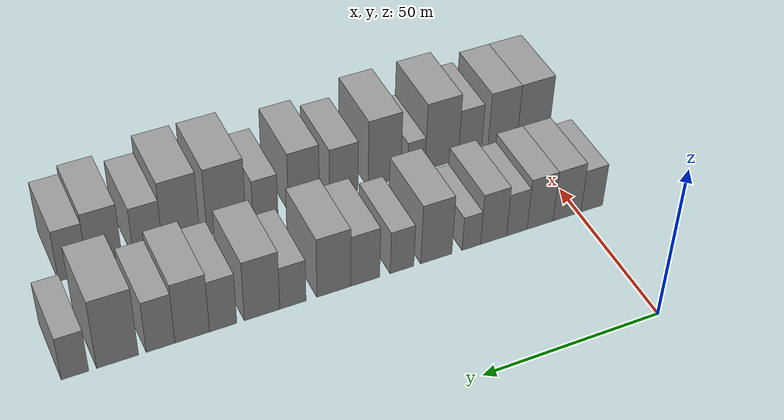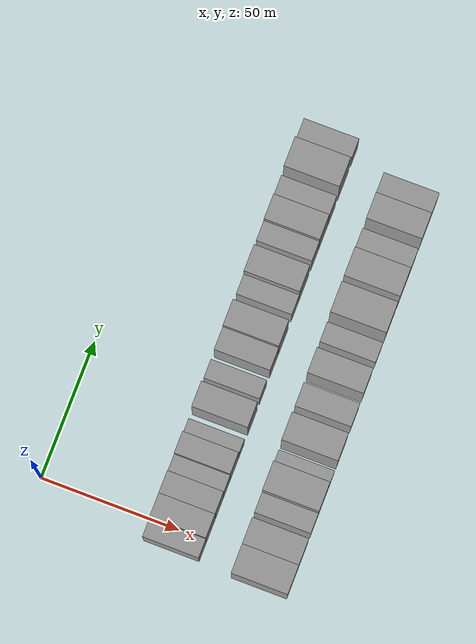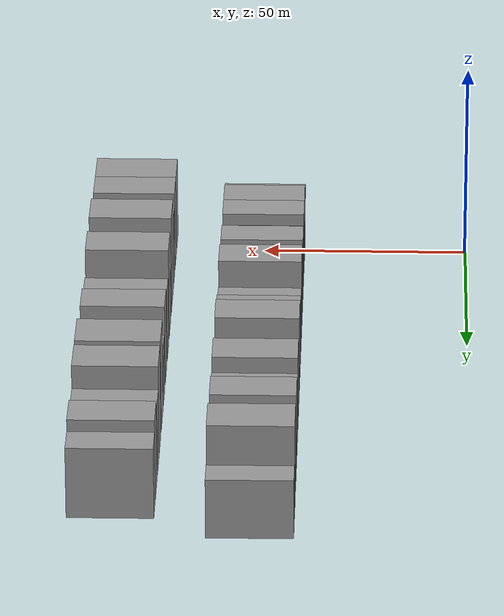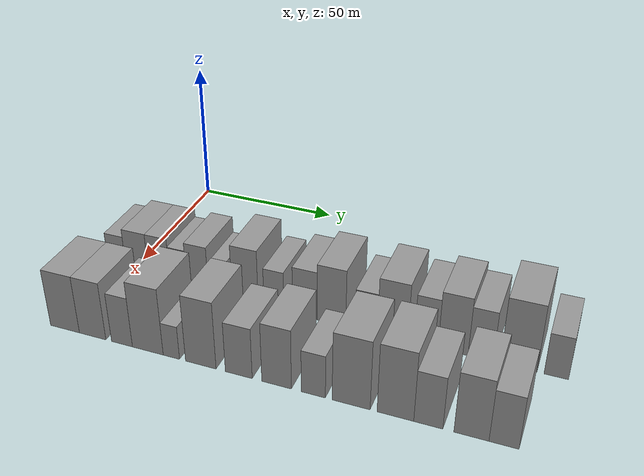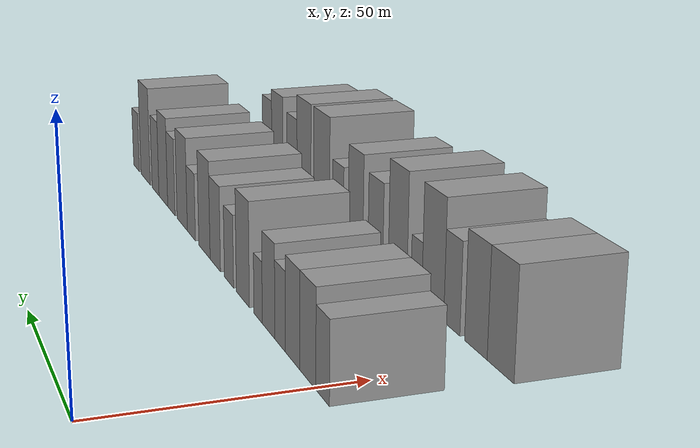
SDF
<sdf version="1.6">
 <world name="default">
  <model name="building_32">
   <static>1</static>
   <pose>50.0000 -4.1049 0 0.000000 0.000000 0.000000</pose>
   <link name="link">
    <pose>0 0 7.50 0 0 0</pose>
    <collision name="collision"><geometry><box><size>20.0000 6.8079 15.0000</size></box></geometry></collision>
    <visual name="visual">
     <cast_shadows>0</cast_shadows>
     <geometry><box><size>20.0000 6.8079 15.0000</size></box></geometry>
     <material>
      <script>
       <uri>model://grey_wall/materials/scripts</uri>
       <uri>model://grey_wall/materials/textures</uri>
       <name>vrc/grey_wall</name>
      </script>
     </material>
    </visual>
   </link>
  </model>
  <model name="building_33">
   <static>1</static>
   <pose>50.0000 3.5767 0 0.000000 0.000000 0.000000</pose>
   <link name="link">
    <pose>0 0 9.00 0 0 0</pose>
    <collision name="collision"><geometry><box><size>20.0000 8.5552 18.0000</size></box></geometry></collision>
    <visual name="visual">
     <cast_shadows>0</cast_shadows>
     <geometry><box><size>20.0000 8.5552 18.0000</size></box></geometry>
     <material>
      <script>
       <uri>model://grey_wall/materials/scripts</uri>
       <uri>model://grey_wall/materials/textures</uri>
       <name>vrc/grey_wall</name>
      </script>
     </material>
    </visual>
   </link>
  </model>
  <model name="building_34">
   <static>1</static>
   <pose>50.0000 11.8458 0 0.000000 0.000000 0.000000</pose>
   <link name="link">
    <pose>0 0 9.00 0 0 0</pose>
    <collision name="collision"><geometry><box><size>20.0000 7.9831 18.0000</size></box></geometry></collision>
    <visual name="visual">
     <cast_shadows>0</cast_shadows>
     <geometry><box><size>20.0000 7.9831 18.0000</size></box></geometry>
     <material>
      <script>
       <uri>model://grey_wall/materials/scripts</uri>
       <uri>model://grey_wall/materials/textures</uri>
       <name>vrc/grey_wall</name>
      </script>
     </material>
    </visual>
   </link>
  </model>
  <model name="building_35">
   <static>1</static>
   <pose>50.0000 18.9449 0 0.000000 0.000000 0.000000</pose>
   <link name="link">
    <pose>0 0 7.50 0 0 0</pose>
    <collision name="collision"><geometry><box><size>20.0000 6.2151 15.0000</size></box></geometry></collision>
    <visual name="visual">
     <cast_shadows>0</cast_shadows>
     <geometry><box><size>20.0000 6.2151 15.0000</size></box></geometry>
     <material>
      <script>
       <uri>model://grey_wall/materials/scripts</uri>
       <uri>model://grey_wall/materials/textures</uri>
       <name>vrc/grey_wall</name>
      </script>
     </material>
    </visual>
   </link>
  </model>
  <model name="building_36">
   <static>1</static>
   <pose>50.0000 25.9649 0 0.000000 0.000000 0.000000</pose>
   <link name="link">
    <pose>0 0 9.00 0 0 0</pose>
    <collision name="collision"><geometry><box><size>20.0000 7.8249 18.0000</size></box></geometry></collision>
    <visual name="visual">
     <cast_shadows>0</cast_shadows>
     <geometry><box><size>20.0000 7.8249 18.0000</size></box></geometry>
     <material>
      <script>
       <uri>model://grey_wall/materials/scripts</uri>
       <uri>model://grey_wall/materials/textures</uri>
       <name>vrc/grey_wall</name>
      </script>
     </material>
    </visual>
   </link>
  </model>
  <model name="building_37">
   <static>1</static>
   <pose>50.0000 32.6095 0 0.000000 0.000000 0.000000</pose>
   <link name="link">
    <pose>0 0 6.00 0 0 0</pose>
    <collision name="collision"><geometry><box><size>20.0000 5.4643 12.0000</size></box></geometry></collision>
    <visual name="visual">
     <cast_shadows>0</cast_shadows>
     <geometry><box><size>20.0000 5.4643 12.0000</size></box></geometry>
     <material>
      <script>
       <uri>model://grey_wall/materials/scripts</uri>
       <uri>model://grey_wall/materials/textures</uri>
       <name>vrc/grey_wall</name>
      </script>
     </material>
    </visual>
   </link>
  </model>
  <model name="building_38">
   <static>1</static>
   <pose>50.0000 42.9192 0 0.000000 0.000000 0.000000</pose>
   <link name="link">
    <pose>0 0 10.50 0 0 0</pose>
    <collision name="collision"><geometry><box><size>20.0000 9.1551 21.0000</size></box></geometry></collision>
    <visual name="visual">
     <cast_shadows>0</cast_shadows>
     <geometry><box><size>20.0000 9.1551 21.0000</size></box></geometry>
     <material>
      <script>
       <uri>model://grey_wall/materials/scripts</uri>
       <uri>model://grey_wall/materials/textures</uri>
       <name>vrc/grey_wall</name>
      </script>
     </material>
    </visual>
   </link>
  </model>
  <model name="building_39">
   <static>1</static>
   <pose>50.0000 52.9085 0 0.000000 0.000000 0.000000</pose>
   <link name="link">
    <pose>0 0 7.50 0 0 0</pose>
    <collision name="collision"><geometry><box><size>20.0000 6.8234 15.0000</size></box></geometry></collision>
    <visual name="visual">
     <cast_shadows>0</cast_shadows>
     <geometry><box><size>20.0000 6.8234 15.0000</size></box></geometry>
     <material>
      <script>
       <uri>model://grey_wall/materials/scripts</uri>
       <uri>model://grey_wall/materials/textures</uri>
       <name>vrc/grey_wall</name>
      </script>
     </material>
    </visual>
   </link>
  </model>
  <model name="building_40">
   <static>1</static>
   <pose>50.0000 63.4467 0 0.000000 0.000000 0.000000</pose>
   <link name="link">
    <pose>0 0 9.00 0 0 0</pose>
    <collision name="collision"><geometry><box><size>20.0000 8.2529 18.0000</size></box></geometry></collision>
    <visual name="visual">
     <cast_shadows>0</cast_shadows>
     <geometry><box><size>20.0000 8.2529 18.0000</size></box></geometry>
     <material>
      <script>
       <uri>model://grey_wall/materials/scripts</uri>
       <uri>model://grey_wall/materials/textures</uri>
       <name>vrc/grey_wall</name>
      </script>
     </material>
    </visual>
   </link>
  </model>
  <model name="building_41">
   <static>1</static>
   <pose>50.0000 72.3110 0 0.000000 0.000000 0.000000</pose>
   <link name="link">
    <pose>0 0 10.50 0 0 0</pose>
    <collision name="collision"><geometry><box><size>20.0000 9.4759 21.0000</size></box></geometry></collision>
    <visual name="visual">
     <cast_shadows>0</cast_shadows>
     <geometry><box><size>20.0000 9.4759 21.0000</size></box></geometry>
     <material>
      <script>
       <uri>model://grey_wall/materials/scripts</uri>
       <uri>model://grey_wall/materials/textures</uri>
       <name>vrc/grey_wall</name>
      </script>
     </material>
    </visual>
   </link>
  </model>
  <model name="building_42">
   <static>1</static>
   <pose>50.0000 83.6777 0 0.000000 0.000000 0.000000</pose>
   <link name="link">
    <pose>0 0 7.50 0 0 0</pose>
    <collision name="collision"><geometry><box><size>20.0000 7.2575 15.0000</size></box></geometry></collision>
    <visual name="visual">
     <cast_shadows>0</cast_shadows>
     <geometry><box><size>20.0000 7.2575 15.0000</size></box></geometry>
     <material>
      <script>
       <uri>model://grey_wall/materials/scripts</uri>
       <uri>model://grey_wall/materials/textures</uri>
       <name>vrc/grey_wall</name>
      </script>
     </material>
    </visual>
   </link>
  </model>
  <model name="building_43">
   <static>1</static>
   <pose>50.0000 92.1425 0 0.000000 0.000000 0.000000</pose>
   <link name="link">
    <pose>0 0 10.50 0 0 0</pose>
    <collision name="collision"><geometry><box><size>20.0000 9.6722 21.0000</size></box></geometry></collision>
    <visual name="visual">
     <cast_shadows>0</cast_shadows>
     <geometry><box><size>20.0000 9.6722 21.0000</size></box></geometry>
     <material>
      <script>
       <uri>model://grey_wall/materials/scripts</uri>
       <uri>model://grey_wall/materials/textures</uri>
       <name>vrc/grey_wall</name>
      </script>
     </material>
    </visual>
   </link>
  </model>
  <model name="building_44">
   <static>1</static>
   <pose>50.0000 102.6468 0 0.000000 0.000000 0.000000</pose>
   <link name="link">
    <pose>0 0 9.00 0 0 0</pose>
    <collision name="collision"><geometry><box><size>20.0000 7.3364 18.0000</size></box></geometry></collision>
    <visual name="visual">
     <cast_shadows>0</cast_shadows>
     <geometry><box><size>20.0000 7.3364 18.0000</size></box></geometry>
     <material>
      <script>
       <uri>model://grey_wall/materials/scripts</uri>
       <uri>model://grey_wall/materials/textures</uri>
       <name>vrc/grey_wall</name>
      </script>
     </material>
    </visual>
   </link>
  </model>
  <model name="building_45">
   <static>1</static>
   <pose>50.0000 110.8877 0 0.000000 0.000000 0.000000</pose>
   <link name="link">
    <pose>0 0 10.50 0 0 0</pose>
    <collision name="collision"><geometry><box><size>20.0000 9.1454 21.0000</size></box></geometry></collision>
    <visual name="visual">
     <cast_shadows>0</cast_shadows>
     <geometry><box><size>20.0000 9.1454 21.0000</size></box></geometry>
     <material>
      <script>
       <uri>model://grey_wall/materials/scripts</uri>
       <uri>model://grey_wall/materials/textures</uri>
       <name>vrc/grey_wall</name>
      </script>
     </material>
    </visual>
   </link>
  </model>
  <model name="building_46">
   <static>1</static>
   <pose>50.0000 119.2314 0 0.000000 0.000000 0.000000</pose>
   <link name="link">
    <pose>0 0 9.00 0 0 0</pose>
    <collision name="collision"><geometry><box><size>20.0000 7.5420 18.0000</size></box></geometry></collision>
    <visual name="visual">
     <cast_shadows>0</cast_shadows>
     <geometry><box><size>20.0000 7.5420 18.0000</size></box></geometry>
     <material>
      <script>
       <uri>model://grey_wall/materials/scripts</uri>
       <uri>model://grey_wall/materials/textures</uri>
       <name>vrc/grey_wall</name>
      </script>
     </material>
    </visual>
   </link>
  </model>
  <model name="building_47">
   <static>1</static>
   <pose>50.0000 130.3996 0 0.000000 0.000000 0.000000</pose>
   <link name="link">
    <pose>0 0 12.00 0 0 0</pose>
    <collision name="collision"><geometry><box><size>20.0000 10.7944 24.0000</size></box></geometry></collision>
    <visual name="visual">
     <cast_shadows>0</cast_shadows>
     <geometry><box><size>20.0000 10.7944 24.0000</size></box></geometry>
     <material>
      <script>
       <uri>model://grey_wall/materials/scripts</uri>
       <uri>model://grey_wall/materials/textures</uri>
       <name>vrc/grey_wall</name>
      </script>
     </material>
    </visual>
   </link>
  </model>
  <model name="building_48">
   <static>1</static>
   <pose>50.0000 141.2876 0 0.000000 0.000000 0.000000</pose>
   <link name="link">
    <pose>0 0 7.50 0 0 0</pose>
    <collision name="collision"><geometry><box><size>20.0000 6.9815 15.0000</size></box></geometry></collision>
    <visual name="visual">
     <cast_shadows>0</cast_shadows>
     <geometry><box><size>20.0000 6.9815 15.0000</size></box></geometry>
     <material>
      <script>
       <uri>model://grey_wall/materials/scripts</uri>
       <uri>model://grey_wall/materials/textures</uri>
       <name>vrc/grey_wall</name>
      </script>
     </material>
    </visual>
   </link>
  </model>
  <model name="building_95">
   <static>1</static>
   <pose>82.0000 -3.5701 0 0.000000 0.000000 0.000000</pose>
   <link name="link">
    <pose>0 0 10.50 0 0 0</pose>
    <collision name="collision"><geometry><box><size>20.0000 10.4129 21.0000</size></box></geometry></collision>
    <visual name="visual">
     <cast_shadows>0</cast_shadows>
     <geometry><box><size>20.0000 10.4129 21.0000</size></box></geometry>
     <material>
      <script>
       <uri>model://grey_wall/materials/scripts</uri>
       <uri>model://grey_wall/materials/textures</uri>
       <name>vrc/grey_wall</name>
      </script>
     </material>
    </visual>
   </link>
  </model>
  <model name="building_96">
   <static>1</static>
   <pose>82.0000 6.3272 0 0.000000 0.000000 0.000000</pose>
   <link name="link">
    <pose>0 0 10.50 0 0 0</pose>
    <collision name="collision"><geometry><box><size>20.0000 9.3818 21.0000</size></box></geometry></collision>
    <visual name="visual">
     <cast_shadows>0</cast_shadows>
     <geometry><box><size>20.0000 9.3818 21.0000</size></box></geometry>
     <material>
      <script>
       <uri>model://grey_wall/materials/scripts</uri>
       <uri>model://grey_wall/materials/textures</uri>
       <name>vrc/grey_wall</name>
      </script>
     </material>
    </visual>
   </link>
  </model>
  <model name="building_97">
   <static>1</static>
   <pose>82.0000 16.6407 0 0.000000 0.000000 0.000000</pose>
   <link name="link">
    <pose>0 0 9.00 0 0 0</pose>
    <collision name="collision"><geometry><box><size>20.0000 7.2453 18.0000</size></box></geometry></collision>
    <visual name="visual">
     <cast_shadows>0</cast_shadows>
     <geometry><box><size>20.0000 7.2453 18.0000</size></box></geometry>
     <material>
      <script>
       <uri>model://grey_wall/materials/scripts</uri>
       <uri>model://grey_wall/materials/textures</uri>
       <name>vrc/grey_wall</name>
      </script>
     </material>
    </visual>
   </link>
  </model>
  <model name="building_98">
   <static>1</static>
   <pose>82.0000 25.4958 0 0.000000 0.000000 0.000000</pose>
   <link name="link">
    <pose>0 0 12.00 0 0 0</pose>
    <collision name="collision"><geometry><box><size>20.0000 10.4648 24.0000</size></box></geometry></collision>
    <visual name="visual">
     <cast_shadows>0</cast_shadows>
     <geometry><box><size>20.0000 10.4648 24.0000</size></box></geometry>
     <material>
      <script>
       <uri>model://grey_wall/materials/scripts</uri>
       <uri>model://grey_wall/materials/textures</uri>
       <name>vrc/grey_wall</name>
      </script>
     </material>
    </visual>
   </link>
  </model>
  <model name="building_99">
   <static>1</static>
   <pose>82.0000 33.4550 0 0.000000 0.000000 0.000000</pose>
   <link name="link">
    <pose>0 0 6.00 0 0 0</pose>
    <collision name="collision"><geometry><box><size>20.0000 5.4536 12.0000</size></box></geometry></collision>
    <visual name="visual">
     <cast_shadows>0</cast_shadows>
     <geometry><box><size>20.0000 5.4536 12.0000</size></box></geometry>
     <material>
      <script>
       <uri>model://grey_wall/materials/scripts</uri>
       <uri>model://grey_wall/materials/textures</uri>
       <name>vrc/grey_wall</name>
      </script>
     </material>
    </visual>
   </link>
  </model>
  <model name="building_100">
   <static>1</static>
   <pose>82.0000 43.1637 0 0.000000 0.000000 0.000000</pose>
   <link name="link">
    <pose>0 0 12.00 0 0 0</pose>
    <collision name="collision"><geometry><box><size>20.0000 9.9637 24.0000</size></box></geometry></collision>
    <visual name="visual">
     <cast_shadows>0</cast_shadows>
     <geometry><box><size>20.0000 9.9637 24.0000</size></box></geometry>
     <material>
      <script>
       <uri>model://grey_wall/materials/scripts</uri>
       <uri>model://grey_wall/materials/textures</uri>
       <name>vrc/grey_wall</name>
      </script>
     </material>
    </visual>
   </link>
  </model>
  <model name="building_101">
   <static>1</static>
   <pose>82.0000 55.4075 0 0.000000 0.000000 0.000000</pose>
   <link name="link">
    <pose>0 0 9.00 0 0 0</pose>
    <collision name="collision"><geometry><box><size>20.0000 8.5238 18.0000</size></box></geometry></collision>
    <visual name="visual">
     <cast_shadows>0</cast_shadows>
     <geometry><box><size>20.0000 8.5238 18.0000</size></box></geometry>
     <material>
      <script>
       <uri>model://grey_wall/materials/scripts</uri>
       <uri>model://grey_wall/materials/textures</uri>
       <name>vrc/grey_wall</name>
      </script>
     </material>
    </visual>
   </link>
  </model>
  <model name="building_102">
   <static>1</static>
   <pose>82.0000 67.2413 0 0.000000 0.000000 0.000000</pose>
   <link name="link">
    <pose>0 0 10.50 0 0 0</pose>
    <collision name="collision"><geometry><box><size>20.0000 9.1438 21.0000</size></box></geometry></collision>
    <visual name="visual">
     <cast_shadows>0</cast_shadows>
     <geometry><box><size>20.0000 9.1438 21.0000</size></box></geometry>
     <material>
      <script>
       <uri>model://grey_wall/materials/scripts</uri>
       <uri>model://grey_wall/materials/textures</uri>
       <name>vrc/grey_wall</name>
      </script>
     </material>
    </visual>
   </link>
  </model>
  <model name="building_103">
   <static>1</static>
   <pose>82.0000 78.4467 0 0.000000 0.000000 0.000000</pose>
   <link name="link">
    <pose>0 0 7.50 0 0 0</pose>
    <collision name="collision"><geometry><box><size>20.0000 7.2670 15.0000</size></box></geometry></collision>
    <visual name="visual">
     <cast_shadows>0</cast_shadows>
     <geometry><box><size>20.0000 7.2670 15.0000</size></box></geometry>
     <material>
      <script>
       <uri>model://grey_wall/materials/scripts</uri>
       <uri>model://grey_wall/materials/textures</uri>
       <name>vrc/grey_wall</name>
      </script>
     </material>
    </visual>
   </link>
  </model>
  <model name="building_104">
   <static>1</static>
   <pose>82.0000 89.6541 0 0.000000 0.000000 0.000000</pose>
   <link name="link">
    <pose>0 0 12.00 0 0 0</pose>
    <collision name="collision"><geometry><box><size>20.0000 11.1478 24.0000</size></box></geometry></collision>
    <visual name="visual">
     <cast_shadows>0</cast_shadows>
     <geometry><box><size>20.0000 11.1478 24.0000</size></box></geometry>
     <material>
      <script>
       <uri>model://grey_wall/materials/scripts</uri>
       <uri>model://grey_wall/materials/textures</uri>
       <name>vrc/grey_wall</name>
      </script>
     </material>
    </visual>
   </link>
  </model>
  <model name="building_105">
   <static>1</static>
   <pose>82.0000 102.4390 0 0.000000 0.000000 0.000000</pose>
   <link name="link">
    <pose>0 0 12.00 0 0 0</pose>
    <collision name="collision"><geometry><box><size>20.0000 10.4221 24.0000</size></box></geometry></collision>
    <visual name="visual">
     <cast_shadows>0</cast_shadows>
     <geometry><box><size>20.0000 10.4221 24.0000</size></box></geometry>
     <material>
      <script>
       <uri>model://grey_wall/materials/scripts</uri>
       <uri>model://grey_wall/materials/textures</uri>
       <name>vrc/grey_wall</name>
      </script>
     </material>
    </visual>
   </link>
  </model>
  <model name="building_106">
   <static>1</static>
   <pose>82.0000 111.6975 0 0.000000 0.000000 0.000000</pose>
   <link name="link">
    <pose>0 0 9.00 0 0 0</pose>
    <collision name="collision"><geometry><box><size>20.0000 8.0949 18.0000</size></box></geometry></collision>
    <visual name="visual">
     <cast_shadows>0</cast_shadows>
     <geometry><box><size>20.0000 8.0949 18.0000</size></box></geometry>
     <material>
      <script>
       <uri>model://grey_wall/materials/scripts</uri>
       <uri>model://grey_wall/materials/textures</uri>
       <name>vrc/grey_wall</name>
      </script>
     </material>
    </visual>
   </link>
  </model>
  <model name="building_107">
   <static>1</static>
   <pose>82.0000 123.4829 0 0.000000 0.000000 0.000000</pose>
   <link name="link">
    <pose>0 0 10.50 0 0 0</pose>
    <collision name="collision"><geometry><box><size>20.0000 9.4757 21.0000</size></box></geometry></collision>
    <visual name="visual">
     <cast_shadows>0</cast_shadows>
     <geometry><box><size>20.0000 9.4757 21.0000</size></box></geometry>
     <material>
      <script>
       <uri>model://grey_wall/materials/scripts</uri>
       <uri>model://grey_wall/materials/textures</uri>
       <name>vrc/grey_wall</name>
      </script>
     </material>
    </visual>
   </link>
  </model>
  <model name="building_108">
   <static>1</static>
   <pose>82.0000 132.1943 0 0.000000 0.000000 0.000000</pose>
   <link name="link">
    <pose>0 0 9.00 0 0 0</pose>
    <collision name="collision"><geometry><box><size>20.0000 7.9472 18.0000</size></box></geometry></collision>
    <visual name="visual">
     <cast_shadows>0</cast_shadows>
     <geometry><box><size>20.0000 7.9472 18.0000</size></box></geometry>
     <material>
      <script>
       <uri>model://grey_wall/materials/scripts</uri>
       <uri>model://grey_wall/materials/textures</uri>
       <name>vrc/grey_wall</name>
      </script>
     </material>
    </visual>
   </link>
  </model>
 </world>
</sdf>
